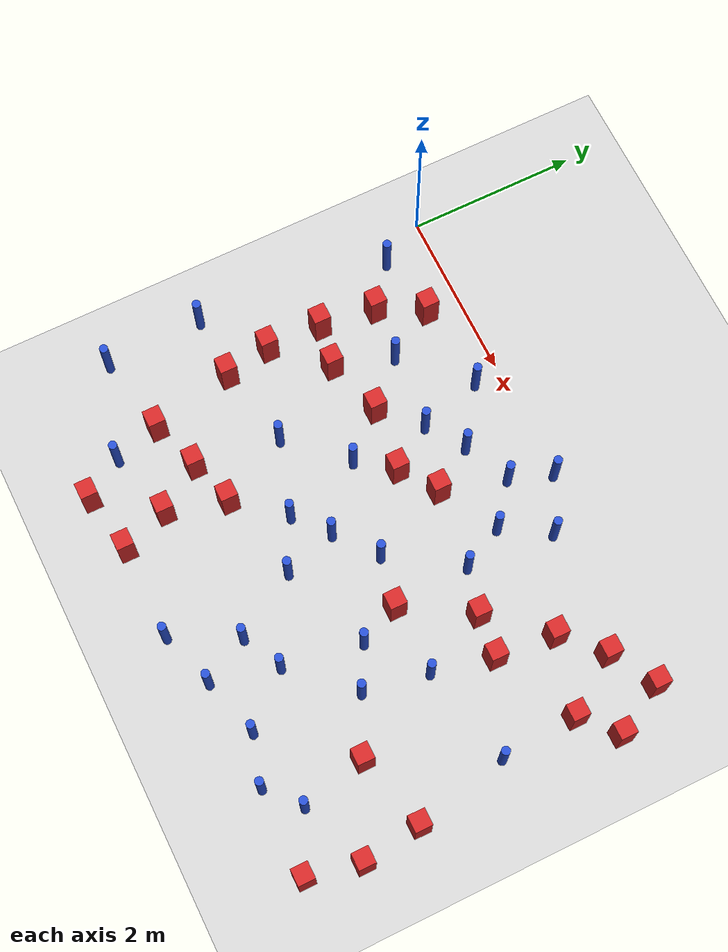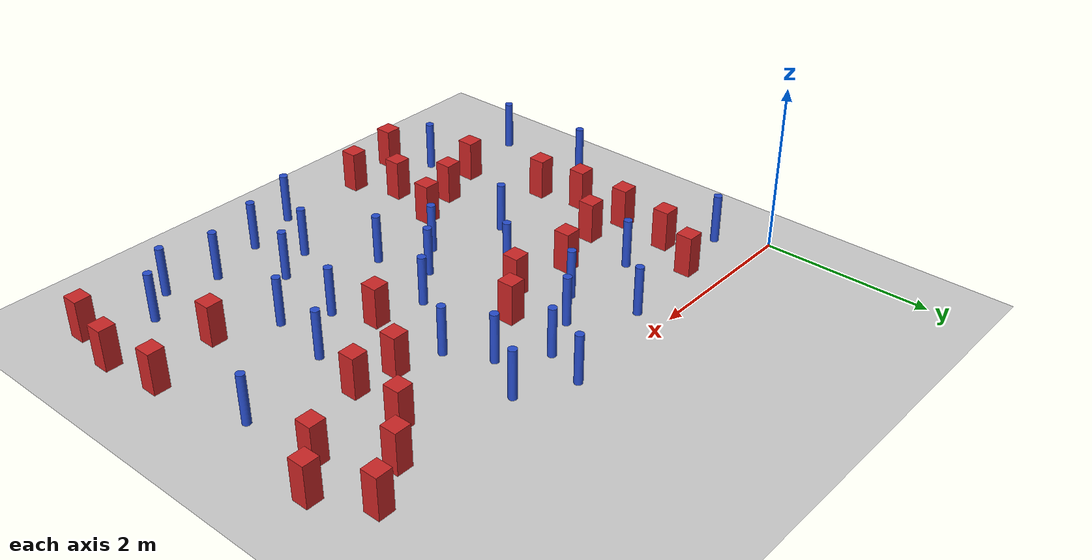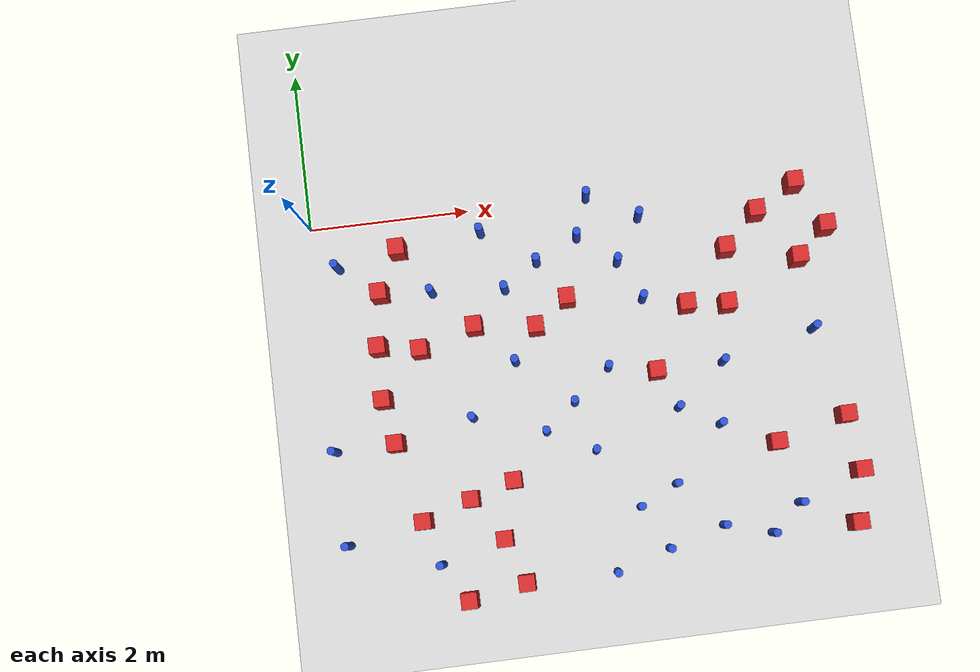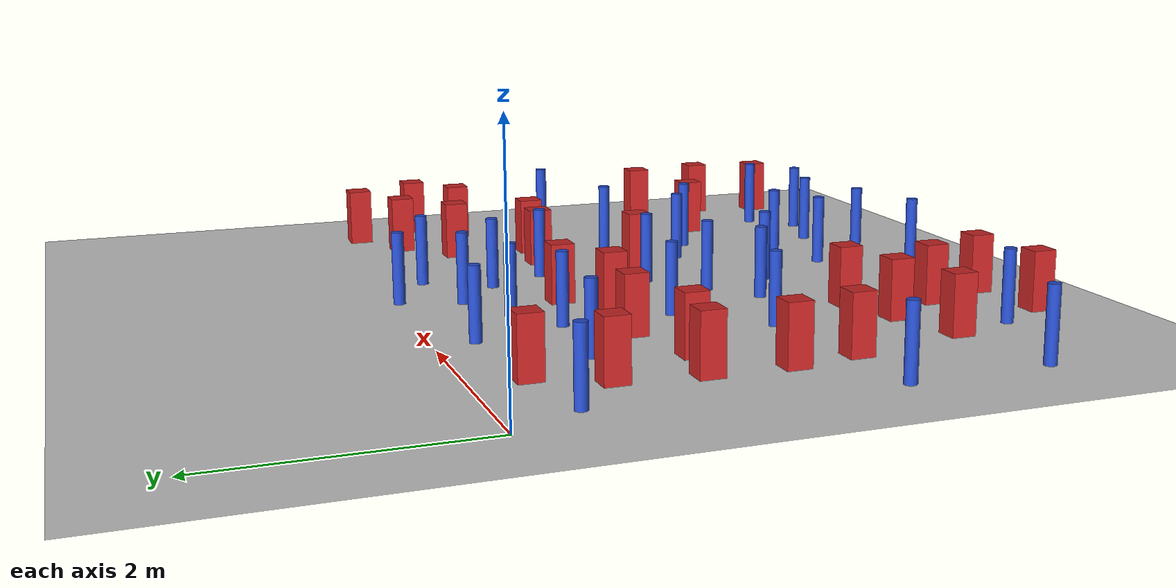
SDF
<sdf version="1.6">
 <world name="default">
  <model name="ground_plane">
   <static>1</static>
   <link name="link">
    <collision name="collision">
     <geometry><plane><normal>0 0 1</normal><size>100 100</size></plane></geometry>
     <surface><friction><ode><mu>100</mu><mu2>50</mu2></ode></friction></surface>
    </collision>
    <visual name="visual">
     <cast_shadows>0</cast_shadows>
     <geometry><plane><normal>0 0 1</normal><size>100 100</size></plane></geometry>
     <material>
      <ambient>1.0 1.0 1.0 1.0</ambient>
      <diffuse>0.8 0.8 0.8 1.0</diffuse>
      <specular>0.01 0.01 0.01 1.000000</specular>
     </material>
    </visual>
   </link>
  </model>
  <model name="NamedLocations">
   <static>true</static>
   <link name="DefaultStart"><pose>8.5 0 0 0 0 3.14</pose></link>
  </model>
  <model name="pole_obstacle2">
   <static>true</static>
   <pose>3.5081300478 -2.21266276407 7.38925637345e-09 -8.47170692798e-08 1.24976764939e-08 -1.74513093025e-07</pose>
   <link name="link">
    <pose>0 0 0.3 0 -0 0</pose>
    <inertial>
     <mass>1</mass>
     <inertia><ixx>0.145833</ixx><ixy>0</ixy><ixz>0</ixz><iyy>0.145833</iyy><iyz>0</iyz><izz>0.125</izz></inertia>
    </inertial>
    <collision name="collision">
     <geometry><cylinder><radius>0.05</radius><length>.6</length></cylinder></geometry>
    </collision>
    <visual name="visual">
     <geometry><cylinder><radius>0.05</radius><length>.6</length></cylinder></geometry>
     <material>
      <script><name>Gazebo/Blue</name><uri>file://media/materials/scripts/gazebo.material</uri></script>
     </material>
    </visual>
   </link>
  </model>
  <model name="square_post_obstacle7">
   <static>true</static>
   <pose>5.44725526189 -3.38446065969 1.91545236811e-07 -7.35059704564e-06 1.12565212e-07 2.39332434364e-05</pose>
   <link name="link">
    <pose>0 0 0.25 0 -0 0</pose>
    <inertial>
     <mass>100</mass>
     <inertia>
      <ixx>0.166667</ixx>
      <ixy>0</ixy>
      <ixz>0</ixz>
      <iyy>0.166667</iyy>
      <iyz>0</iyz>
      <izz>0.166667</izz>
     </inertia>
    </inertial>
    <collision name="collision"><geometry><box><size>.2 .2 .5</size></box></geometry></collision>
    <visual name="visual">
     <geometry><box><size>.2 .2 .5</size></box></geometry>
     <material>
      <script><name>Gazebo/Red</name><uri>file://media/materials/scripts/gazebo.material</uri></script>
     </material>
    </visual>
   </link>
  </model>
  <model name="square_post_obstacle8">
   <static>true</static>
   <pose>4.5720733056 -1.5507630868 1.91545236811e-07 -7.35059704564e-06 1.12565212e-07 2.39332434364e-05</pose>
   <link name="link">
    <pose>0 0 0.25 0 -0 0</pose>
    <inertial>
     <mass>100</mass>
     <inertia>
      <ixx>0.166667</ixx>
      <ixy>0</ixy>
      <ixz>0</ixz>
      <iyy>0.166667</iyy>
      <iyz>0</iyz>
      <izz>0.166667</izz>
     </inertia>
    </inertial>
    <collision name="collision"><geometry><box><size>.2 .2 .5</size></box></geometry></collision>
    <visual name="visual">
     <geometry><box><size>.2 .2 .5</size></box></geometry>
     <material>
      <script><name>Gazebo/Red</name><uri>file://media/materials/scripts/gazebo.material</uri></script>
     </material>
    </visual>
   </link>
  </model>
  <model name="square_post_obstacle10">
   <static>true</static>
   <pose>0.801643969608 -0.949715972117 1.91545236811e-07 -7.35059704564e-06 1.12565212e-07 2.39332434364e-05</pose>
   <link name="link">
    <pose>0 0 0.25 0 -0 0</pose>
    <inertial>
     <mass>100</mass>
     <inertia>
      <ixx>0.166667</ixx>
      <ixy>0</ixy>
      <ixz>0</ixz>
      <iyy>0.166667</iyy>
      <iyz>0</iyz>
      <izz>0.166667</izz>
     </inertia>
    </inertial>
    <collision name="collision"><geometry><box><size>.2 .2 .5</size></box></geometry></collision>
    <visual name="visual">
     <geometry><box><size>.2 .2 .5</size></box></geometry>
     <material>
      <script><name>Gazebo/Red</name><uri>file://media/materials/scripts/gazebo.material</uri></script>
     </material>
    </visual>
   </link>
  </model>
  <model name="pole_obstacle9">
   <static>true</static>
   <pose>2.37202641082 -1.99833520378 7.38925637345e-09 -8.471706928e-08 1.249767651e-08 -1.74513093015e-07</pose>
   <link name="link">
    <pose>0 0 0.3 0 -0 0</pose>
    <inertial>
     <mass>1</mass>
     <inertia><ixx>0.145833</ixx><ixy>0</ixy><ixz>0</ixz><iyy>0.145833</iyy><iyz>0</iyz><izz>0.125</izz></inertia>
    </inertial>
    <collision name="collision">
     <geometry><cylinder><radius>0.05</radius><length>.6</length></cylinder></geometry>
    </collision>
    <visual name="visual">
     <geometry><cylinder><radius>0.05</radius><length>.6</length></cylinder></geometry>
     <material>
      <script><name>Gazebo/Blue</name><uri>file://media/materials/scripts/gazebo.material</uri></script>
     </material>
    </visual>
   </link>
  </model>
  <model name="square_post_obstacle28">
   <static>true</static>
   <pose>6.10022374076 -0.198097112676 1.91545236811e-07 -7.35059704564e-06 1.12565212e-07 2.39332434364e-05</pose>
   <link name="link">
    <pose>0 0 0.25 0 -0 0</pose>
    <inertial>
     <mass>100</mass>
     <inertia>
      <ixx>0.166667</ixx>
      <ixy>0</ixy>
      <ixz>0</ixz>
      <iyy>0.166667</iyy>
      <iyz>0</iyz>
      <izz>0.166667</izz>
     </inertia>
    </inertial>
    <collision name="collision"><geometry><box><size>.2 .2 .5</size></box></geometry></collision>
    <visual name="visual">
     <geometry><box><size>.2 .2 .5</size></box></geometry>
     <material>
      <script><name>Gazebo/Red</name><uri>file://media/materials/scripts/gazebo.material</uri></script>
     </material>
    </visual>
   </link>
  </model>
  <model name="pole_obstacle21">
   <static>true</static>
   <pose>3.4985297321 -0.0414478611089 7.38925637345e-09 -8.47170692801e-08 1.24976765199e-08 -1.74513093011e-07</pose>
   <link name="link">
    <pose>0 0 0.3 0 -0 0</pose>
    <inertial>
     <mass>1</mass>
     <inertia><ixx>0.145833</ixx><ixy>0</ixy><ixz>0</ixz><iyy>0.145833</iyy><iyz>0</iyz><izz>0.125</izz></inertia>
    </inertial>
    <collision name="collision">
     <geometry><cylinder><radius>0.05</radius><length>.6</length></cylinder></geometry>
    </collision>
    <visual name="visual">
     <geometry><cylinder><radius>0.05</radius><length>.6</length></cylinder></geometry>
     <material>
      <script><name>Gazebo/Blue</name><uri>file://media/materials/scripts/gazebo.material</uri></script>
     </material>
    </visual>
   </link>
  </model>
  <model name="square_post_obstacle31">
   <static>true</static>
   <pose>2.19304067484 -4.70252332004 1.91545236811e-07 -7.35059704564e-06 1.12565212e-07 2.39332434364e-05</pose>
   <link name="link">
    <pose>0 0 0.25 0 -0 0</pose>
    <inertial>
     <mass>100</mass>
     <inertia>
      <ixx>0.166667</ixx>
      <ixy>0</ixy>
      <ixz>0</ixz>
      <iyy>0.166667</iyy>
      <iyz>0</iyz>
      <izz>0.166667</izz>
     </inertia>
    </inertial>
    <collision name="collision"><geometry><box><size>.2 .2 .5</size></box></geometry></collision>
    <visual name="visual">
     <geometry><box><size>.2 .2 .5</size></box></geometry>
     <material>
      <script><name>Gazebo/Red</name><uri>file://media/materials/scripts/gazebo.material</uri></script>
     </material>
    </visual>
   </link>
  </model>
  <model name="pole_obstacle24">
   <static>true</static>
   <pose>4.30938493807 -2.81167326229 7.38925637345e-09 -8.47170692798e-08 1.24976764937e-08 -1.74513093023e-07</pose>
   <link name="link">
    <pose>0 0 0.3 0 -0 0</pose>
    <inertial>
     <mass>1</mass>
     <inertia><ixx>0.145833</ixx><ixy>0</ixy><ixz>0</ixz><iyy>0.145833</iyy><iyz>0</iyz><izz>0.125</izz></inertia>
    </inertial>
    <collision name="collision">
     <geometry><cylinder><radius>0.05</radius><length>.6</length></cylinder></geometry>
    </collision>
    <visual name="visual">
     <geometry><cylinder><radius>0.05</radius><length>.6</length></cylinder></geometry>
     <material>
      <script><name>Gazebo/Blue</name><uri>file://media/materials/scripts/gazebo.material</uri></script>
     </material>
    </visual>
   </link>
  </model>
  <model name="pole_obstacle26">
   <static>true</static>
   <pose>4.16039516926 -3.73871226274 7.38925637345e-09 -8.47170692798e-08 1.24976764937e-08 -1.74513093023e-07</pose>
   <link name="link">
    <pose>0 0 0.3 0 -0 0</pose>
    <inertial>
     <mass>1</mass>
     <inertia><ixx>0.145833</ixx><ixy>0</ixy><ixz>0</ixz><iyy>0.145833</iyy><iyz>0</iyz><izz>0.125</izz></inertia>
    </inertial>
    <collision name="collision">
     <geometry><cylinder><radius>0.05</radius><length>.6</length></cylinder></geometry>
    </collision>
    <visual name="visual">
     <geometry><cylinder><radius>0.05</radius><length>.6</length></cylinder></geometry>
     <material>
      <script><name>Gazebo/Blue</name><uri>file://media/materials/scripts/gazebo.material</uri></script>
     </material>
    </visual>
   </link>
  </model>
  <model name="pole_obstacle35">
   <static>true</static>
   <pose>0.0418125739611 -2.83449588093 7.38925637345e-09 -8.47170692793e-08 1.24976764386e-08 -1.74513093042e-07</pose>
   <link name="link">
    <pose>0 0 0.3 0 -0 0</pose>
    <inertial>
     <mass>1</mass>
     <inertia><ixx>0.145833</ixx><ixy>0</ixy><ixz>0</ixz><iyy>0.145833</iyy><iyz>0</iyz><izz>0.125</izz></inertia>
    </inertial>
    <collision name="collision">
     <geometry><cylinder><radius>0.05</radius><length>.6</length></cylinder></geometry>
    </collision>
    <visual name="visual">
     <geometry><cylinder><radius>0.05</radius><length>.6</length></cylinder></geometry>
     <material>
      <script><name>Gazebo/Blue</name><uri>file://media/materials/scripts/gazebo.material</uri></script>
     </material>
    </visual>
   </link>
  </model>
  <model name="pole_obstacle40">
   <static>true</static>
   <pose>5.63358938242 -4.15321317183 7.38925637345e-09 -8.47170692796e-08 1.24976764786e-08 -1.74513093032e-07</pose>
   <link name="link">
    <pose>0 0 0.3 0 -0 0</pose>
    <inertial>
     <mass>1</mass>
     <inertia><ixx>0.145833</ixx><ixy>0</ixy><ixz>0</ixz><iyy>0.145833</iyy><iyz>0</iyz><izz>0.125</izz></inertia>
    </inertial>
    <collision name="collision">
     <geometry><cylinder><radius>0.05</radius><length>.6</length></cylinder></geometry>
    </collision>
    <visual name="visual">
     <geometry><cylinder><radius>0.05</radius><length>.6</length></cylinder></geometry>
     <material>
      <script><name>Gazebo/Blue</name><uri>file://media/materials/scripts/gazebo.material</uri></script>
     </material>
    </visual>
   </link>
  </model>
  <model name="square_post_obstacle44">
   <static>true</static>
   <pose>2.67948871377 -1.59867004419 1.91545236811e-07 -7.35059704564e-06 1.12565212e-07 2.39332434364e-05</pose>
   <link name="link">
    <pose>0 0 0.25 0 -0 0</pose>
    <inertial>
     <mass>100</mass>
     <inertia>
      <ixx>0.166667</ixx>
      <ixy>0</ixy>
      <ixz>0</ixz>
      <iyy>0.166667</iyy>
      <iyz>0</iyz>
      <izz>0.166667</izz>
     </inertia>
    </inertial>
    <collision name="collision"><geometry><box><size>.2 .2 .5</size></box></geometry></collision>
    <visual name="visual">
     <geometry><box><size>.2 .2 .5</size></box></geometry>
     <material>
      <script><name>Gazebo/Red</name><uri>file://media/materials/scripts/gazebo.material</uri></script>
     </material>
    </visual>
   </link>
  </model>
  <model name="pole_obstacle48">
   <static>true</static>
   <pose>3.78677779062 -0.909518426599 7.38925637345e-09 -8.471706928e-08 1.24976765177e-08 -1.74513093012e-07</pose>
   <link name="link">
    <pose>0 0 0.3 0 -0 0</pose>
    <inertial>
     <mass>1</mass>
     <inertia><ixx>0.145833</ixx><ixy>0</ixy><ixz>0</ixz><iyy>0.145833</iyy><iyz>0</iyz><izz>0.125</izz></inertia>
    </inertial>
    <collision name="collision">
     <geometry><cylinder><radius>0.05</radius><length>.6</length></cylinder></geometry>
    </collision>
    <visual name="visual">
     <geometry><cylinder><radius>0.05</radius><length>.6</length></cylinder></geometry>
     <material>
      <script><name>Gazebo/Blue</name><uri>file://media/materials/scripts/gazebo.material</uri></script>
     </material>
    </visual>
   </link>
  </model>
  <model name="pole_obstacle49">
   <static>true</static>
   <pose>1.1887852077 -4.36199946849 7.38925637345e-09 -8.47170692799e-08 1.24976765033e-08 -1.74513093018e-07</pose>
   <link name="link">
    <pose>0 0 0.3 0 -0 0</pose>
    <inertial>
     <mass>1</mass>
     <inertia><ixx>0.145833</ixx><ixy>0</ixy><ixz>0</ixz><iyy>0.145833</iyy><iyz>0</iyz><izz>0.125</izz></inertia>
    </inertial>
    <collision name="collision">
     <geometry><cylinder><radius>0.05</radius><length>.6</length></cylinder></geometry>
    </collision>
    <visual name="visual">
     <geometry><cylinder><radius>0.05</radius><length>.6</length></cylinder></geometry>
     <material>
      <script><name>Gazebo/Blue</name><uri>file://media/materials/scripts/gazebo.material</uri></script>
     </material>
    </visual>
   </link>
  </model>
  <model name="pole_obstacle51">
   <static>true</static>
   <pose>0.313045486956 -0.560827809688 7.38925637345e-09 -8.47170692799e-08 1.24976765033e-08 -1.74513093019e-07</pose>
   <link name="link">
    <pose>0 0 0.3 0 -0 0</pose>
    <inertial>
     <mass>1</mass>
     <inertia><ixx>0.145833</ixx><ixy>0</ixy><ixz>0</ixz><iyy>0.145833</iyy><iyz>0</iyz><izz>0.125</izz></inertia>
    </inertial>
    <collision name="collision">
     <geometry><cylinder><radius>0.05</radius><length>.6</length></cylinder></geometry>
    </collision>
    <visual name="visual">
     <geometry><cylinder><radius>0.05</radius><length>.6</length></cylinder></geometry>
     <material>
      <script><name>Gazebo/Blue</name><uri>file://media/materials/scripts/gazebo.material</uri></script>
     </material>
    </visual>
   </link>
  </model>
  <model name="square_post_obstacle57">
   <static>true</static>
   <pose>1.9203338429 -1.50047499163 1.91545236811e-07 -7.35059704564e-06 1.12565212e-07 2.39332434364e-05</pose>
   <link name="link">
    <pose>0 0 0.25 0 -0 0</pose>
    <inertial>
     <mass>100</mass>
     <inertia>
      <ixx>0.166667</ixx>
      <ixy>0</ixy>
      <ixz>0</ixz>
      <iyy>0.166667</iyy>
      <iyz>0</iyz>
      <izz>0.166667</izz>
     </inertia>
    </inertial>
    <collision name="collision"><geometry><box><size>.2 .2 .5</size></box></geometry></collision>
    <visual name="visual">
     <geometry><box><size>.2 .2 .5</size></box></geometry>
     <material>
      <script><name>Gazebo/Red</name><uri>file://media/materials/scripts/gazebo.material</uri></script>
     </material>
    </visual>
   </link>
  </model>
  <model name="square_post_obstacle60">
   <static>true</static>
   <pose>6.41825443811 -0.788652779057 1.91545236811e-07 -7.35059704564e-06 1.12565212e-07 2.39332434364e-05</pose>
   <link name="link">
    <pose>0 0 0.25 0 -0 0</pose>
    <inertial>
     <mass>100</mass>
     <inertia>
      <ixx>0.166667</ixx>
      <ixy>0</ixy>
      <ixz>0</ixz>
      <iyy>0.166667</iyy>
      <iyz>0</iyz>
      <izz>0.166667</izz>
     </inertia>
    </inertial>
    <collision name="collision"><geometry><box><size>.2 .2 .5</size></box></geometry></collision>
    <visual name="visual">
     <geometry><box><size>.2 .2 .5</size></box></geometry>
     <material>
      <script><name>Gazebo/Red</name><uri>file://media/materials/scripts/gazebo.material</uri></script>
     </material>
    </visual>
   </link>
  </model>
  <model name="pole_obstacle57">
   <static>true</static>
   <pose>3.30500369015 -4.71466033257 7.38925637345e-09 -8.47170692798e-08 1.24976765033e-08 -1.74513093019e-07</pose>
   <link name="link">
    <pose>0 0 0.3 0 -0 0</pose>
    <inertial>
     <mass>1</mass>
     <inertia><ixx>0.145833</ixx><ixy>0</ixy><ixz>0</ixz><iyy>0.145833</iyy><iyz>0</iyz><izz>0.125</izz></inertia>
    </inertial>
    <collision name="collision">
     <geometry><cylinder><radius>0.05</radius><length>.6</length></cylinder></geometry>
    </collision>
    <visual name="visual">
     <geometry><cylinder><radius>0.05</radius><length>.6</length></cylinder></geometry>
     <material>
      <script><name>Gazebo/Blue</name><uri>file://media/materials/scripts/gazebo.material</uri></script>
     </material>
    </visual>
   </link>
  </model>
  <model name="square_post_obstacle65">
   <static>true</static>
   <pose>6.2898701324 -4.47602349839 1.91545236811e-07 -7.35059704564e-06 1.12565212e-07 2.39332434364e-05</pose>
   <link name="link">
    <pose>0 0 0.25 0 -0 0</pose>
    <inertial>
     <mass>100</mass>
     <inertia>
      <ixx>0.166667</ixx>
      <ixy>0</ixy>
      <ixz>0</ixz>
      <iyy>0.166667</iyy>
      <iyz>0</iyz>
      <izz>0.166667</izz>
     </inertia>
    </inertial>
    <collision name="collision"><geometry><box><size>.2 .2 .5</size></box></geometry></collision>
    <visual name="visual">
     <geometry><box><size>.2 .2 .5</size></box></geometry>
     <material>
      <script><name>Gazebo/Red</name><uri>file://media/materials/scripts/gazebo.material</uri></script>
     </material>
    </visual>
   </link>
  </model>
  <model name="square_post_obstacle66">
   <static>true</static>
   <pose>5.14432701234 -0.910425348321 1.91545236811e-07 -7.35059704564e-06 1.12565212e-07 2.39332434364e-05</pose>
   <link name="link">
    <pose>0 0 0.25 0 -0 0</pose>
    <inertial>
     <mass>100</mass>
     <inertia>
      <ixx>0.166667</ixx>
      <ixy>0</ixy>
      <ixz>0</ixz>
      <iyy>0.166667</iyy>
      <iyz>0</iyz>
      <izz>0.166667</izz>
     </inertia>
    </inertial>
    <collision name="collision"><geometry><box><size>.2 .2 .5</size></box></geometry></collision>
    <visual name="visual">
     <geometry><box><size>.2 .2 .5</size></box></geometry>
     <material>
      <script><name>Gazebo/Red</name><uri>file://media/materials/scripts/gazebo.material</uri></script>
     </material>
    </visual>
   </link>
  </model>
  <model name="pole_obstacle64">
   <static>true</static>
   <pose>1.43867167774 -1.00990792378 7.38925637345e-09 -8.47170692799e-08 1.24976765073e-08 -1.74513093016e-07</pose>
   <link name="link">
    <pose>0 0 0.3 0 -0 0</pose>
    <inertial>
     <mass>1</mass>
     <inertia><ixx>0.145833</ixx><ixy>0</ixy><ixz>0</ixz><iyy>0.145833</iyy><iyz>0</iyz><izz>0.125</izz></inertia>
    </inertial>
    <collision name="collision">
     <geometry><cylinder><radius>0.05</radius><length>.6</length></cylinder></geometry>
    </collision>
    <visual name="visual">
     <geometry><cylinder><radius>0.05</radius><length>.6</length></cylinder></geometry>
     <material>
      <script><name>Gazebo/Blue</name><uri>file://media/materials/scripts/gazebo.material</uri></script>
     </material>
    </visual>
   </link>
  </model>
  <model name="square_post_obstacle75">
   <static>true</static>
   <pose>5.07318579276 -1.60870232823 1.91545236811e-07 -7.35059704564e-06 1.12565212e-07 2.39332434364e-05</pose>
   <link name="link">
    <pose>0 0 0.25 0 -0 0</pose>
    <inertial>
     <mass>100</mass>
     <inertia>
      <ixx>0.166667</ixx>
      <ixy>0</ixy>
      <ixz>0</ixz>
      <iyy>0.166667</iyy>
      <iyz>0</iyz>
      <izz>0.166667</izz>
     </inertia>
    </inertial>
    <collision name="collision"><geometry><box><size>.2 .2 .5</size></box></geometry></collision>
    <visual name="visual">
     <geometry><box><size>.2 .2 .5</size></box></geometry>
     <material>
      <script><name>Gazebo/Red</name><uri>file://media/materials/scripts/gazebo.material</uri></script>
     </material>
    </visual>
   </link>
  </model>
  <model name="square_post_obstacle78">
   <static>true</static>
   <pose>5.57921042071 -0.497897841936 1.91545236811e-07 -7.35059704564e-06 1.12565212e-07 2.39332434364e-05</pose>
   <link name="link">
    <pose>0 0 0.25 0 -0 0</pose>
    <inertial>
     <mass>100</mass>
     <inertia>
      <ixx>0.166667</ixx>
      <ixy>0</ixy>
      <ixz>0</ixz>
      <iyy>0.166667</iyy>
      <iyz>0</iyz>
      <izz>0.166667</izz>
     </inertia>
    </inertial>
    <collision name="collision"><geometry><box><size>.2 .2 .5</size></box></geometry></collision>
    <visual name="visual">
     <geometry><box><size>.2 .2 .5</size></box></geometry>
     <material>
      <script><name>Gazebo/Red</name><uri>file://media/materials/scripts/gazebo.material</uri></script>
     </material>
    </visual>
   </link>
  </model>
  <model name="square_post_obstacle82">
   <static>true</static>
   <pose>1.03177610053 -3.81214563342 1.91545236811e-07 -7.35059704564e-06 1.12565212e-07 2.39332434364e-05</pose>
   <link name="link">
    <pose>0 0 0.25 0 -0 0</pose>
    <inertial>
     <mass>100</mass>
     <inertia>
      <ixx>0.166667</ixx>
      <ixy>0</ixy>
      <ixz>0</ixz>
      <iyy>0.166667</iyy>
      <iyz>0</iyz>
      <izz>0.166667</izz>
     </inertia>
    </inertial>
    <collision name="collision"><geometry><box><size>.2 .2 .5</size></box></geometry></collision>
    <visual name="visual">
     <geometry><box><size>.2 .2 .5</size></box></geometry>
     <material>
      <script><name>Gazebo/Red</name><uri>file://media/materials/scripts/gazebo.material</uri></script>
     </material>
    </visual>
   </link>
  </model>
  <model name="pole_obstacle90">
   <static>true</static>
   <pose>6.09612479803 -2.0446694376 7.38925637345e-09 -8.471706928e-08 1.2497676506e-08 -1.74513093017e-07</pose>
   <link name="link">
    <pose>0 0 0.3 0 -0 0</pose>
    <inertial>
     <mass>1</mass>
     <inertia><ixx>0.145833</ixx><ixy>0</ixy><ixz>0</ixz><iyy>0.145833</iyy><iyz>0</iyz><izz>0.125</izz></inertia>
    </inertial>
    <collision name="collision">
     <geometry><cylinder><radius>0.05</radius><length>.6</length></cylinder></geometry>
    </collision>
    <visual name="visual">
     <geometry><cylinder><radius>0.05</radius><length>.6</length></cylinder></geometry>
     <material>
      <script><name>Gazebo/Blue</name><uri>file://media/materials/scripts/gazebo.material</uri></script>
     </material>
    </visual>
   </link>
  </model>
  <model name="square_post_obstacle87">
   <static>true</static>
   <pose>1.22341885714 -1.70772693309 1.91545236811e-07 -7.35059704564e-06 1.12565212e-07 2.39332434364e-05</pose>
   <link name="link">
    <pose>0 0 0.25 0 -0 0</pose>
    <inertial>
     <mass>100</mass>
     <inertia>
      <ixx>0.166667</ixx>
      <ixy>0</ixy>
      <ixz>0</ixz>
      <iyy>0.166667</iyy>
      <iyz>0</iyz>
      <izz>0.166667</izz>
     </inertia>
    </inertial>
    <collision name="collision"><geometry><box><size>.2 .2 .5</size></box></geometry></collision>
    <visual name="visual">
     <geometry><box><size>.2 .2 .5</size></box></geometry>
     <material>
      <script><name>Gazebo/Red</name><uri>file://media/materials/scripts/gazebo.material</uri></script>
     </material>
    </visual>
   </link>
  </model>
  <model name="pole_obstacle100">
   <static>true</static>
   <pose>2.78135863384 -0.785878670485 7.38925637345e-09 -8.471706928e-08 1.24976765177e-08 -1.74513093012e-07</pose>
   <link name="link">
    <pose>0 0 0.3 0 -0 0</pose>
    <inertial>
     <mass>1</mass>
     <inertia><ixx>0.145833</ixx><ixy>0</ixy><ixz>0</ixz><iyy>0.145833</iyy><iyz>0</iyz><izz>0.125</izz></inertia>
    </inertial>
    <collision name="collision">
     <geometry><cylinder><radius>0.05</radius><length>.6</length></cylinder></geometry>
    </collision>
    <visual name="visual">
     <geometry><cylinder><radius>0.05</radius><length>.6</length></cylinder></geometry>
     <material>
      <script><name>Gazebo/Blue</name><uri>file://media/materials/scripts/gazebo.material</uri></script>
     </material>
    </visual>
   </link>
  </model>
  <model name="square_post_obstacle91">
   <static>true</static>
   <pose>0.701388960776 -2.27508200489 1.91545236811e-07 -7.35059704564e-06 1.12565212e-07 2.39332434364e-05</pose>
   <link name="link">
    <pose>0 0 0.25 0 -0 0</pose>
    <inertial>
     <mass>100</mass>
     <inertia>
      <ixx>0.166667</ixx>
      <ixy>0</ixy>
      <ixz>0</ixz>
      <iyy>0.166667</iyy>
      <iyz>0</iyz>
      <izz>0.166667</izz>
     </inertia>
    </inertial>
    <collision name="collision"><geometry><box><size>.2 .2 .5</size></box></geometry></collision>
    <visual name="visual">
     <geometry><box><size>.2 .2 .5</size></box></geometry>
     <material>
      <script><name>Gazebo/Red</name><uri>file://media/materials/scripts/gazebo.material</uri></script>
     </material>
    </visual>
   </link>
  </model>
  <model name="pole_obstacle104">
   <static>true</static>
   <pose>2.12805971067 -0.329069031999 7.38925637345e-09 -8.471706928e-08 1.24976765172e-08 -1.74513093013e-07</pose>
   <link name="link">
    <pose>0 0 0.3 0 -0 0</pose>
    <inertial>
     <mass>1</mass>
     <inertia><ixx>0.145833</ixx><ixy>0</ixy><ixz>0</ixz><iyy>0.145833</iyy><iyz>0</iyz><izz>0.125</izz></inertia>
    </inertial>
    <collision name="collision">
     <geometry><cylinder><radius>0.05</radius><length>.6</length></cylinder></geometry>
    </collision>
    <visual name="visual">
     <geometry><cylinder><radius>0.05</radius><length>.6</length></cylinder></geometry>
     <material>
      <script><name>Gazebo/Blue</name><uri>file://media/materials/scripts/gazebo.material</uri></script>
     </material>
    </visual>
   </link>
  </model>
  <model name="square_post_obstacle99">
   <static>true</static>
   <pose>6.33298249858 -3.15822006784 1.91545236811e-07 -7.35059704564e-06 1.12565212e-07 2.39332434364e-05</pose>
   <link name="link">
    <pose>0 0 0.25 0 -0 0</pose>
    <inertial>
     <mass>100</mass>
     <inertia>
      <ixx>0.166667</ixx>
      <ixy>0</ixy>
      <ixz>0</ixz>
      <iyy>0.166667</iyy>
      <iyz>0</iyz>
      <izz>0.166667</izz>
     </inertia>
    </inertial>
    <collision name="collision"><geometry><box><size>.2 .2 .5</size></box></geometry></collision>
    <visual name="visual">
     <geometry><box><size>.2 .2 .5</size></box></geometry>
     <material>
      <script><name>Gazebo/Red</name><uri>file://media/materials/scripts/gazebo.material</uri></script>
     </material>
    </visual>
   </link>
  </model>
  <model name="pole_obstacle113">
   <static>true</static>
   <pose>4.79603203952 -3.07773101428 7.38925637345e-09 -8.47170692798e-08 1.24976764937e-08 -1.74513093023e-07</pose>
   <link name="link">
    <pose>0 0 0.3 0 -0 0</pose>
    <inertial>
     <mass>1</mass>
     <inertia><ixx>0.145833</ixx><ixy>0</ixy><ixz>0</ixz><iyy>0.145833</iyy><iyz>0</iyz><izz>0.125</izz></inertia>
    </inertial>
    <collision name="collision">
     <geometry><cylinder><radius>0.05</radius><length>.6</length></cylinder></geometry>
    </collision>
    <visual name="visual">
     <geometry><cylinder><radius>0.05</radius><length>.6</length></cylinder></geometry>
     <material>
      <script><name>Gazebo/Blue</name><uri>file://media/materials/scripts/gazebo.material</uri></script>
     </material>
    </visual>
   </link>
  </model>
  <model name="square_post_obstacle102">
   <static>true</static>
   <pose>1.08174750827 -0.423717242315 1.91545236811e-07 -7.35059704564e-06 1.12565212e-07 2.39332434364e-05</pose>
   <link name="link">
    <pose>0 0 0.25 0 -0 0</pose>
    <inertial>
     <mass>100</mass>
     <inertia>
      <ixx>0.166667</ixx>
      <ixy>0</ixy>
      <ixz>0</ixz>
      <iyy>0.166667</iyy>
      <iyz>0</iyz>
      <izz>0.166667</izz>
     </inertia>
    </inertial>
    <collision name="collision"><geometry><box><size>.2 .2 .5</size></box></geometry></collision>
    <visual name="visual">
     <geometry><box><size>.2 .2 .5</size></box></geometry>
     <material>
      <script><name>Gazebo/Red</name><uri>file://media/materials/scripts/gazebo.material</uri></script>
     </material>
    </visual>
   </link>
  </model>
  <model name="pole_obstacle118">
   <static>true</static>
   <pose>4.67242242632 -4.30956527512 7.38925637345e-09 -8.47170692796e-08 1.24976764786e-08 -1.74513093032e-07</pose>
   <link name="link">
    <pose>0 0 0.3 0 -0 0</pose>
    <inertial>
     <mass>1</mass>
     <inertia><ixx>0.145833</ixx><ixy>0</ixy><ixz>0</ixz><iyy>0.145833</iyy><iyz>0</iyz><izz>0.125</izz></inertia>
    </inertial>
    <collision name="collision">
     <geometry><cylinder><radius>0.05</radius><length>.6</length></cylinder></geometry>
    </collision>
    <visual name="visual">
     <geometry><cylinder><radius>0.05</radius><length>.6</length></cylinder></geometry>
     <material>
      <script><name>Gazebo/Blue</name><uri>file://media/materials/scripts/gazebo.material</uri></script>
     </material>
    </visual>
   </link>
  </model>
  <model name="pole_obstacle126">
   <static>true</static>
   <pose>4.92723329885 -2.31478640952 7.38925637345e-09 -8.47170692798e-08 1.24976764937e-08 -1.74513093023e-07</pose>
   <link name="link">
    <pose>0 0 0.3 0 -0 0</pose>
    <inertial>
     <mass>1</mass>
     <inertia><ixx>0.145833</ixx><ixy>0</ixy><ixz>0</ixz><iyy>0.145833</iyy><iyz>0</iyz><izz>0.125</izz></inertia>
    </inertial>
    <collision name="collision">
     <geometry><cylinder><radius>0.05</radius><length>.6</length></cylinder></geometry>
    </collision>
    <visual name="visual">
     <geometry><cylinder><radius>0.05</radius><length>.6</length></cylinder></geometry>
     <material>
      <script><name>Gazebo/Blue</name><uri>file://media/materials/scripts/gazebo.material</uri></script>
     </material>
    </visual>
   </link>
  </model>
  <model name="pole_obstacle128">
   <static>true</static>
   <pose>1.76924186742 -2.62621631901 7.38925637345e-09 -8.47170692799e-08 1.24976765053e-08 -1.74513093017e-07</pose>
   <link name="link">
    <pose>0 0 0.3 0 -0 0</pose>
    <inertial>
     <mass>1</mass>
     <inertia><ixx>0.145833</ixx><ixy>0</ixy><ixz>0</ixz><iyy>0.145833</iyy><iyz>0</iyz><izz>0.125</izz></inertia>
    </inertial>
    <collision name="collision">
     <geometry><cylinder><radius>0.05</radius><length>.6</length></cylinder></geometry>
    </collision>
    <visual name="visual">
     <geometry><cylinder><radius>0.05</radius><length>.6</length></cylinder></geometry>
     <material>
      <script><name>Gazebo/Blue</name><uri>file://media/materials/scripts/gazebo.material</uri></script>
     </material>
    </visual>
   </link>
  </model>
  <model name="square_post_obstacle114">
   <static>true</static>
   <pose>0.714326562307 -1.61638214762 1.91545236811e-07 -7.35059704564e-06 1.12565212e-07 2.39332434364e-05</pose>
   <link name="link">
    <pose>0 0 0.25 0 -0 0</pose>
    <inertial>
     <mass>100</mass>
     <inertia>
      <ixx>0.166667</ixx>
      <ixy>0</ixy>
      <ixz>0</ixz>
      <iyy>0.166667</iyy>
      <iyz>0</iyz>
      <izz>0.166667</izz>
     </inertia>
    </inertial>
    <collision name="collision"><geometry><box><size>.2 .2 .5</size></box></geometry></collision>
    <visual name="visual">
     <geometry><box><size>.2 .2 .5</size></box></geometry>
     <material>
      <script><name>Gazebo/Red</name><uri>file://media/materials/scripts/gazebo.material</uri></script>
     </material>
    </visual>
   </link>
  </model>
  <model name="pole_obstacle141">
   <static>true</static>
   <pose>4.11822071336 -0.373590416498 7.38925637345e-09 -8.47170692798e-08 1.24976765003e-08 -1.7451309302e-07</pose>
   <link name="link">
    <pose>0 0 0.3 0 -0 0</pose>
    <inertial>
     <mass>1</mass>
     <inertia><ixx>0.145833</ixx><ixy>0</ixy><ixz>0</ixz><iyy>0.145833</iyy><iyz>0</iyz><izz>0.125</izz></inertia>
    </inertial>
    <collision name="collision">
     <geometry><cylinder><radius>0.05</radius><length>.6</length></cylinder></geometry>
    </collision>
    <visual name="visual">
     <geometry><cylinder><radius>0.05</radius><length>.6</length></cylinder></geometry>
     <material>
      <script><name>Gazebo/Blue</name><uri>file://media/materials/scripts/gazebo.material</uri></script>
     </material>
    </visual>
   </link>
  </model>
  <model name="square_post_obstacle126">
   <static>true</static>
   <pose>0.799753560936 -2.82807315889 1.91545236811e-07 -7.35059704564e-06 1.12565212e-07 2.39332434364e-05</pose>
   <link name="link">
    <pose>0 0 0.25 0 -0 0</pose>
    <inertial>
     <mass>100</mass>
     <inertia>
      <ixx>0.166667</ixx>
      <ixy>0</ixy>
      <ixz>0</ixz>
      <iyy>0.166667</iyy>
      <iyz>0</iyz>
      <izz>0.166667</izz>
     </inertia>
    </inertial>
    <collision name="collision"><geometry><box><size>.2 .2 .5</size></box></geometry></collision>
    <visual name="visual">
     <geometry><box><size>.2 .2 .5</size></box></geometry>
     <material>
      <script><name>Gazebo/Red</name><uri>file://media/materials/scripts/gazebo.material</uri></script>
     </material>
    </visual>
   </link>
  </model>
  <model name="pole_obstacle143">
   <static>true</static>
   <pose>0.0841075516879 -3.99300584524 7.38925637345e-09 -8.47170692798e-08 1.24976764972e-08 -1.74513093022e-07</pose>
   <link name="link">
    <pose>0 0 0.3 0 -0 0</pose>
    <inertial>
     <mass>1</mass>
     <inertia><ixx>0.145833</ixx><ixy>0</ixy><ixz>0</ixz><iyy>0.145833</iyy><iyz>0</iyz><izz>0.125</izz></inertia>
    </inertial>
    <collision name="collision">
     <geometry><cylinder><radius>0.05</radius><length>.6</length></cylinder></geometry>
    </collision>
    <visual name="visual">
     <geometry><cylinder><radius>0.05</radius><length>.6</length></cylinder></geometry>
     <material>
      <script><name>Gazebo/Blue</name><uri>file://media/materials/scripts/gazebo.material</uri></script>
     </material>
    </visual>
   </link>
  </model>
  <model name="pole_obstacle147">
   <static>true</static>
   <pose>5.25390127922 -4.47860660956 7.38925637345e-09 -8.47170692796e-08 1.24976764786e-08 -1.74513093032e-07</pose>
   <link name="link">
    <pose>0 0 0.3 0 -0 0</pose>
    <inertial>
     <mass>1</mass>
     <inertia><ixx>0.145833</ixx><ixy>0</ixy><ixz>0</ixz><iyy>0.145833</iyy><iyz>0</iyz><izz>0.125</izz></inertia>
    </inertial>
    <collision name="collision">
     <geometry><cylinder><radius>0.05</radius><length>.6</length></cylinder></geometry>
    </collision>
    <visual name="visual">
     <geometry><cylinder><radius>0.05</radius><length>.6</length></cylinder></geometry>
     <material>
      <script><name>Gazebo/Blue</name><uri>file://media/materials/scripts/gazebo.material</uri></script>
     </material>
    </visual>
   </link>
  </model>
  <model name="square_post_obstacle141">
   <static>true</static>
   <pose>1.48092807054 -4.82467065611 1.91545236811e-07 -7.35059704564e-06 1.12565212e-07 2.39332434364e-05</pose>
   <link name="link">
    <pose>0 0 0.25 0 -0 0</pose>
    <inertial>
     <mass>100</mass>
     <inertia>
      <ixx>0.166667</ixx>
      <ixy>0</ixy>
      <ixz>0</ixz>
      <iyy>0.166667</iyy>
      <iyz>0</iyz>
      <izz>0.166667</izz>
     </inertia>
    </inertial>
    <collision name="collision"><geometry><box><size>.2 .2 .5</size></box></geometry></collision>
    <visual name="visual">
     <geometry><box><size>.2 .2 .5</size></box></geometry>
     <material>
      <script><name>Gazebo/Red</name><uri>file://media/materials/scripts/gazebo.material</uri></script>
     </material>
    </visual>
   </link>
  </model>
  <model name="square_post_obstacle142">
   <static>true</static>
   <pose>2.18020159995 -3.45288350599 1.91545236811e-07 -7.35059704564e-06 1.12565212e-07 2.39332434364e-05</pose>
   <link name="link">
    <pose>0 0 0.25 0 -0 0</pose>
    <inertial>
     <mass>100</mass>
     <inertia>
      <ixx>0.166667</ixx>
      <ixy>0</ixy>
      <ixz>0</ixz>
      <iyy>0.166667</iyy>
      <iyz>0</iyz>
      <izz>0.166667</izz>
     </inertia>
    </inertial>
    <collision name="collision"><geometry><box><size>.2 .2 .5</size></box></geometry></collision>
    <visual name="visual">
     <geometry><box><size>.2 .2 .5</size></box></geometry>
     <material>
      <script><name>Gazebo/Red</name><uri>file://media/materials/scripts/gazebo.material</uri></script>
     </material>
    </visual>
   </link>
  </model>
  <model name="square_post_obstacle143">
   <static>true</static>
   <pose>1.63624410201 -3.61770629292 1.91545236811e-07 -7.35059704564e-06 1.12565212e-07 2.39332434364e-05</pose>
   <link name="link">
    <pose>0 0 0.25 0 -0 0</pose>
    <inertial>
     <mass>100</mass>
     <inertia>
      <ixx>0.166667</ixx>
      <ixy>0</ixy>
      <ixz>0</ixz>
      <iyy>0.166667</iyy>
      <iyz>0</iyz>
      <izz>0.166667</izz>
     </inertia>
    </inertial>
    <collision name="collision"><geometry><box><size>.2 .2 .5</size></box></geometry></collision>
    <visual name="visual">
     <geometry><box><size>.2 .2 .5</size></box></geometry>
     <material>
      <script><name>Gazebo/Red</name><uri>file://media/materials/scripts/gazebo.material</uri></script>
     </material>
    </visual>
   </link>
  </model>
  <model name="square_post_obstacle147">
   <static>true</static>
   <pose>6.02929750604 -1.14094957223 1.91545236811e-07 -7.35059704564e-06 1.12565212e-07 2.39332434364e-05</pose>
   <link name="link">
    <pose>0 0 0.25 0 -0 0</pose>
    <inertial>
     <mass>100</mass>
     <inertia>
      <ixx>0.166667</ixx>
      <ixy>0</ixy>
      <ixz>0</ixz>
      <iyy>0.166667</iyy>
      <iyz>0</iyz>
      <izz>0.166667</izz>
     </inertia>
    </inertial>
    <collision name="collision"><geometry><box><size>.2 .2 .5</size></box></geometry></collision>
    <visual name="visual">
     <geometry><box><size>.2 .2 .5</size></box></geometry>
     <material>
      <script><name>Gazebo/Red</name><uri>file://media/materials/scripts/gazebo.material</uri></script>
     </material>
    </visual>
   </link>
  </model>
  <model name="pole_obstacle158">
   <static>true</static>
   <pose>3.68863452622 -3.96428890468 7.38925637345e-09 -8.47170692797e-08 1.24976764881e-08 -1.74513093029e-07</pose>
   <link name="link">
    <pose>0 0 0.3 0 -0 0</pose>
    <inertial>
     <mass>1</mass>
     <inertia><ixx>0.145833</ixx><ixy>0</ixy><ixz>0</ixz><iyy>0.145833</iyy><iyz>0</iyz><izz>0.125</izz></inertia>
    </inertial>
    <collision name="collision">
     <geometry><cylinder><radius>0.05</radius><length>.6</length></cylinder></geometry>
    </collision>
    <visual name="visual">
     <geometry><cylinder><radius>0.05</radius><length>.6</length></cylinder></geometry>
     <material>
      <script><name>Gazebo/Blue</name><uri>file://media/materials/scripts/gazebo.material</uri></script>
     </material>
    </visual>
   </link>
  </model>
  <model name="pole_obstacle161">
   <static>true</static>
   <pose>3.23246550555 -3.2099216049 7.38925637345e-09 -8.47170692798e-08 1.24976764939e-08 -1.74513093025e-07</pose>
   <link name="link">
    <pose>0 0 0.3 0 -0 0</pose>
    <inertial>
     <mass>1</mass>
     <inertia><ixx>0.145833</ixx><ixy>0</ixy><ixz>0</ixz><iyy>0.145833</iyy><iyz>0</iyz><izz>0.125</izz></inertia>
    </inertial>
    <collision name="collision">
     <geometry><cylinder><radius>0.05</radius><length>.6</length></cylinder></geometry>
    </collision>
    <visual name="visual">
     <geometry><cylinder><radius>0.05</radius><length>.6</length></cylinder></geometry>
     <material>
      <script><name>Gazebo/Blue</name><uri>file://media/materials/scripts/gazebo.material</uri></script>
     </material>
    </visual>
   </link>
  </model>
  <model name="square_post_obstacle156">
   <static>true</static>
   <pose>6.42213669918 -3.84992628036 1.91545236811e-07 -7.35059704564e-06 1.12565212e-07 2.39332434364e-05</pose>
   <link name="link">
    <pose>0 0 0.25 0 -0 0</pose>
    <inertial>
     <mass>100</mass>
     <inertia>
      <ixx>0.166667</ixx>
      <ixy>0</ixy>
      <ixz>0</ixz>
      <iyy>0.166667</iyy>
      <iyz>0</iyz>
      <izz>0.166667</izz>
     </inertia>
    </inertial>
    <collision name="collision"><geometry><box><size>.2 .2 .5</size></box></geometry></collision>
    <visual name="visual">
     <geometry><box><size>.2 .2 .5</size></box></geometry>
     <material>
      <script><name>Gazebo/Red</name><uri>file://media/materials/scripts/gazebo.material</uri></script>
     </material>
    </visual>
   </link>
  </model>
  <model name="pole_obstacle166">
   <static>true</static>
   <pose>2.65264277457 -2.90805685395 7.38925637345e-09 -8.47170692798e-08 1.24976764939e-08 -1.74513093025e-07</pose>
   <link name="link">
    <pose>0 0 0.3 0 -0 0</pose>
    <inertial>
     <mass>1</mass>
     <inertia><ixx>0.145833</ixx><ixy>0</ixy><ixz>0</ixz><iyy>0.145833</iyy><iyz>0</iyz><izz>0.125</izz></inertia>
    </inertial>
    <collision name="collision">
     <geometry><cylinder><radius>0.05</radius><length>.6</length></cylinder></geometry>
    </collision>
    <visual name="visual">
     <geometry><cylinder><radius>0.05</radius><length>.6</length></cylinder></geometry>
     <material>
      <script><name>Gazebo/Blue</name><uri>file://media/materials/scripts/gazebo.material</uri></script>
     </material>
    </visual>
   </link>
  </model>
  <model name="pole_obstacle182">
   <static>true</static>
   <pose>4.04166148147 -1.40729865377 7.38925637345e-09 -8.47170692793e-08 1.24976764448e-08 -1.7451309304e-07</pose>
   <link name="link">
    <pose>0 0 0.3 0 -0 0</pose>
    <inertial>
     <mass>1</mass>
     <inertia><ixx>0.145833</ixx><ixy>0</ixy><ixz>0</ixz><iyy>0.145833</iyy><iyz>0</iyz><izz>0.125</izz></inertia>
    </inertial>
    <collision name="collision">
     <geometry><cylinder><radius>0.05</radius><length>.6</length></cylinder></geometry>
    </collision>
    <visual name="visual">
     <geometry><cylinder><radius>0.05</radius><length>.6</length></cylinder></geometry>
     <material>
      <script><name>Gazebo/Blue</name><uri>file://media/materials/scripts/gazebo.material</uri></script>
     </material>
    </visual>
   </link>
  </model>
  <model name="pole_obstacle186">
   <static>true</static>
   <pose>3.04047956393 -2.58621510227 7.38925637345e-09 -8.47170692798e-08 1.24976764939e-08 -1.74513093025e-07</pose>
   <link name="link">
    <pose>0 0 0.3 0 -0 0</pose>
    <inertial>
     <mass>1</mass>
     <inertia><ixx>0.145833</ixx><ixy>0</ixy><ixz>0</ixz><iyy>0.145833</iyy><iyz>0</iyz><izz>0.125</izz></inertia>
    </inertial>
    <collision name="collision">
     <geometry><cylinder><radius>0.05</radius><length>.6</length></cylinder></geometry>
    </collision>
    <visual name="visual">
     <geometry><cylinder><radius>0.05</radius><length>.6</length></cylinder></geometry>
     <material>
      <script><name>Gazebo/Blue</name><uri>file://media/materials/scripts/gazebo.material</uri></script>
     </material>
    </visual>
   </link>
  </model>
  <model name="square_post_obstacle191">
   <static>true</static>
   <pose>4.09459037771 -2.33151106943 1.91545236811e-07 -7.35059704564e-06 1.12565212e-07 2.39332434364e-05</pose>
   <link name="link">
    <pose>0 0 0.25 0 -0 0</pose>
    <inertial>
     <mass>100</mass>
     <inertia>
      <ixx>0.166667</ixx>
      <ixy>0</ixy>
      <ixz>0</ixz>
      <iyy>0.166667</iyy>
      <iyz>0</iyz>
      <izz>0.166667</izz>
     </inertia>
    </inertial>
    <collision name="collision"><geometry><box><size>.2 .2 .5</size></box></geometry></collision>
    <visual name="visual">
     <geometry><box><size>.2 .2 .5</size></box></geometry>
     <material>
      <script><name>Gazebo/Red</name><uri>file://media/materials/scripts/gazebo.material</uri></script>
     </material>
    </visual>
   </link>
  </model>
  <model name="pole_obstacle190">
   <static>true</static>
   <pose>3.32231141211 -0.535458493223 7.38925637345e-09 -8.471706928e-08 1.24976765186e-08 -1.74513093012e-07</pose>
   <link name="link">
    <pose>0 0 0.3 0 -0 0</pose>
    <inertial>
     <mass>1</mass>
     <inertia><ixx>0.145833</ixx><ixy>0</ixy><ixz>0</ixz><iyy>0.145833</iyy><iyz>0</iyz><izz>0.125</izz></inertia>
    </inertial>
    <collision name="collision">
     <geometry><cylinder><radius>0.05</radius><length>.6</length></cylinder></geometry>
    </collision>
    <visual name="visual">
     <geometry><cylinder><radius>0.05</radius><length>.6</length></cylinder></geometry>
     <material>
      <script><name>Gazebo/Blue</name><uri>file://media/materials/scripts/gazebo.material</uri></script>
     </material>
    </visual>
   </link>
  </model>
  <model name="square_post_obstacle205">
   <static>true</static>
   <pose>1.98917069839 -4.14403144827 1.91545236811e-07 -7.35059704564e-06 1.12565212e-07 2.39332434364e-05</pose>
   <link name="link">
    <pose>0 0 0.25 0 -0 0</pose>
    <inertial>
     <mass>100</mass>
     <inertia>
      <ixx>0.166667</ixx>
      <ixy>0</ixy>
      <ixz>0</ixz>
      <iyy>0.166667</iyy>
      <iyz>0</iyz>
      <izz>0.166667</izz>
     </inertia>
    </inertial>
    <collision name="collision"><geometry><box><size>.2 .2 .5</size></box></geometry></collision>
    <visual name="visual">
     <geometry><box><size>.2 .2 .5</size></box></geometry>
     <material>
      <script><name>Gazebo/Red</name><uri>file://media/materials/scripts/gazebo.material</uri></script>
     </material>
    </visual>
   </link>
  </model>
  <model name="square_post_obstacle208">
   <static>true</static>
   <pose>3.10202363323 -1.29494388917 1.91545236811e-07 -7.35059704564e-06 1.12565212e-07 2.39332434364e-05</pose>
   <link name="link">
    <pose>0 0 0.25 0 -0 0</pose>
    <inertial>
     <mass>100</mass>
     <inertia>
      <ixx>0.166667</ixx>
      <ixy>0</ixy>
      <ixz>0</ixz>
      <iyy>0.166667</iyy>
      <iyz>0</iyz>
      <izz>0.166667</izz>
     </inertia>
    </inertial>
    <collision name="collision"><geometry><box><size>.2 .2 .5</size></box></geometry></collision>
    <visual name="visual">
     <geometry><box><size>.2 .2 .5</size></box></geometry>
     <material>
      <script><name>Gazebo/Red</name><uri>file://media/materials/scripts/gazebo.material</uri></script>
     </material>
    </visual>
   </link>
  </model>
  <model name="pole_obstacle216">
   <static>true</static>
   <pose>2.3476274737 -1.08162530225 7.38925637345e-09 -8.471706928e-08 1.24976765152e-08 -1.74513093012e-07</pose>
   <link name="link">
    <pose>0 0 0.3 0 -0 0</pose>
    <inertial>
     <mass>1</mass>
     <inertia><ixx>0.145833</ixx><ixy>0</ixy><ixz>0</ixz><iyy>0.145833</iyy><iyz>0</iyz><izz>0.125</izz></inertia>
    </inertial>
    <collision name="collision">
     <geometry><cylinder><radius>0.05</radius><length>.6</length></cylinder></geometry>
    </collision>
    <visual name="visual">
     <geometry><cylinder><radius>0.05</radius><length>.6</length></cylinder></geometry>
     <material>
      <script><name>Gazebo/Blue</name><uri>file://media/materials/scripts/gazebo.material</uri></script>
     </material>
    </visual>
   </link>
  </model>
  <model name="pole_obstacle222">
   <static>true</static>
   <pose>3.97546050423 -4.50847470886 7.38925637345e-09 -8.47170692798e-08 1.24976764915e-08 -1.74513093026e-07</pose>
   <link name="link">
    <pose>0 0 0.3 0 -0 0</pose>
    <inertial>
     <mass>1</mass>
     <inertia><ixx>0.145833</ixx><ixy>0</ixy><ixz>0</ixz><iyy>0.145833</iyy><iyz>0</iyz><izz>0.125</izz></inertia>
    </inertial>
    <collision name="collision">
     <geometry><cylinder><radius>0.05</radius><length>.6</length></cylinder></geometry>
    </collision>
    <visual name="visual">
     <geometry><cylinder><radius>0.05</radius><length>.6</length></cylinder></geometry>
     <material>
      <script><name>Gazebo/Blue</name><uri>file://media/materials/scripts/gazebo.material</uri></script>
     </material>
    </visual>
   </link>
  </model>
 </world>
</sdf>
